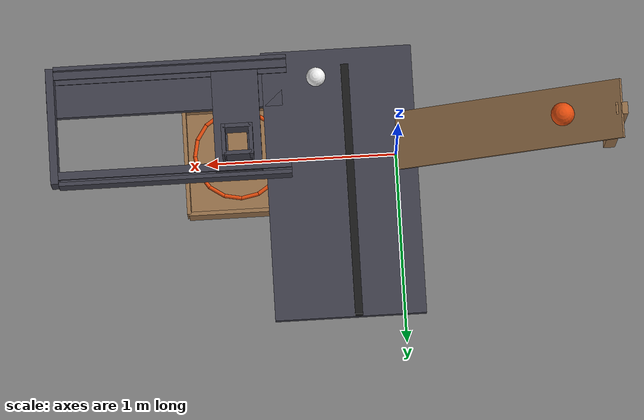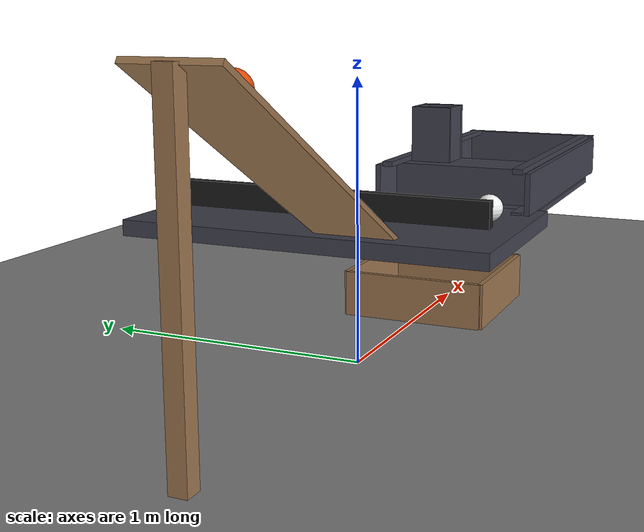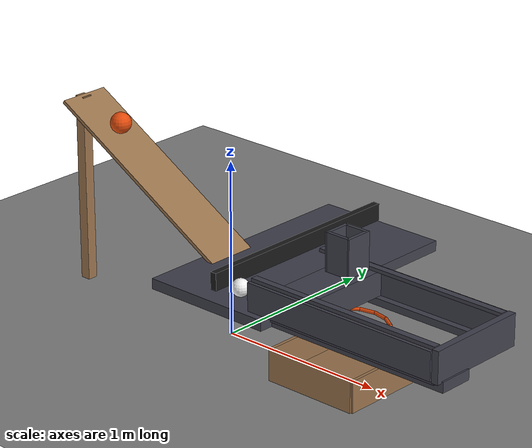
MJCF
<mujoco model="ramp_rotor_latch_and_drop">
  <compiler angle="radian"/>
  <option timestep="0.002"/>
  <worldbody>
    <geom name="floor" type="plane" size="6 6 0.1" friction="0.8 0.005 0.002"/>
    <body name="ramp">
      <geom name="ramp_deck" type="box" pos="-0.562916 0 0.775" size="0.65 0.15 0.01" euler="0 0.523599 0" friction="0.6 0.001 0.0001" rgba="0.6 0.45 0.3 1"/>
      <geom name="ramp_leg" type="box" pos="-1.12583 0 0.55" size="0.03 0.03 0.55" friction="0.6 0.001 0.0001" rgba="0.6 0.45 0.3 1"/>
    </body>
    <body name="runout">
      <geom name="runout" type="box" pos="0.29 0.2 0.43" size="0.39 0.7 0.03" friction="0.4 0.001 0.0001" rgba="0.25 0.25 0.3 1"/>
    </body>
    <body name="ball1" pos="-0.831025 0 1.01062">
      <freejoint/>
      <geom name="ball1" type="sphere" pos="0 0 0" size="0.06" mass="0.6" condim="6" friction="0.6 0.001 0.0001" solref="0.01 1" rgba="0.9 0.3 0.05 1"/>
    </body>
    <body name="rotor" pos="0.25 0.25 0.515">
      <joint name="rotor_hinge" type="hinge" pos="0 0 0" axis="0 0 1" limited="true" range="0 0.418879" damping="0.004" armature="0.0002"/>
      <geom name="rotor" type="box" pos="0 0 0" size="0.02 0.65 0.05" mass="0.08" friction="0.25 0.001 0.0001" solref="0.01 1" rgba="0.1 0.1 0.1 1"/>
    </body>
    <body name="ball2" pos="0.4 -0.35 0.51">
      <freejoint/>
      <geom name="ball2" type="sphere" pos="0 0 0" size="0.05" mass="0.15" condim="6" friction="0.4 0.001 0.0001" solref="0.01 1" rgba="0.95 0.95 0.95 1"/>
    </body>
    <body name="striker runway">
      <geom name="striker runway" type="box" pos="1.19 -0.32 0.43" size="0.61 0.1 0.03" friction="0.4 0.001 0.0001" rgba="0.25 0.25 0.3 1"/>
    </body>
    <body name="right lower rail">
      <geom name="right lower rail" type="box" pos="1.15 -0.41 0.45" size="0.6 0.02 0.02" friction="0.015 0.0001 0.0001" rgba="0.25 0.25 0.3 1"/>
    </body>
    <body name="left lower rail">
      <geom name="left lower rail" type="box" pos="1.15 0.11 0.45" size="0.6 0.02 0.02" friction="0.015 0.0001 0.0001" rgba="0.25 0.25 0.3 1"/>
    </body>
    <body name="right rail cap">
      <geom name="right rail cap" type="box" pos="1.15 -0.41 0.625" size="0.6 0.02 0.01" friction="0.015 0.0001 0.0001" rgba="0.25 0.25 0.3 1"/>
    </body>
    <body name="left rail cap">
      <geom name="left rail cap" type="box" pos="1.15 0.11 0.625" size="0.6 0.02 0.01" friction="0.015 0.0001 0.0001" rgba="0.25 0.25 0.3 1"/>
    </body>
    <body name="right channel wall">
      <geom name="right channel wall" type="box" pos="1.15 -0.45 0.54" size="0.6 0.01 0.08" friction="0.015 0.0001 0.0001" rgba="0.25 0.25 0.3 1"/>
    </body>
    <body name="left channel wall">
      <geom name="left channel wall" type="box" pos="1.15 0.15 0.54" size="0.6 0.01 0.08" friction="0.015 0.0001 0.0001" rgba="0.25 0.25 0.3 1"/>
    </body>
    <body name="latch" pos="0.82 -0.15 0.54">
      <freejoint/>
      <geom name="latch" type="box" pos="0 0 0" size="0.12 0.28 0.07" mass="0.08" friction="0.015 0.0001 0.0001" solref="0.01 1" rgba="0.25 0.25 0.3 1"/>
    </body>
    <body name="latch end stop">
      <geom name="latch end stop" type="box" pos="1.77 -0.15 0.54" size="0.02 0.3 0.09" solref="0.01 1" rgba="0.25 0.25 0.3 1"/>
    </body>
    <body name="ring">
      <geom name="ring_00" type="capsule" size="0.01" fromto="1.05 0 0.3 1.03249 0.0880172 0.3" rgba="0.9 0.3 0.05 1"/>
      <geom name="ring_01" type="capsule" size="0.01" fromto="1.03249 0.0880172 0.3 0.982635 0.162635 0.3" rgba="0.9 0.3 0.05 1"/>
      <geom name="ring_02" type="capsule" size="0.01" fromto="0.982635 0.162635 0.3 0.908017 0.212492 0.3" rgba="0.9 0.3 0.05 1"/>
      <geom name="ring_03" type="capsule" size="0.01" fromto="0.908017 0.212492 0.3 0.82 0.23 0.3" rgba="0.9 0.3 0.05 1"/>
      <geom name="ring_04" type="capsule" size="0.01" fromto="0.82 0.23 0.3 0.731983 0.212492 0.3" rgba="0.9 0.3 0.05 1"/>
      <geom name="ring_05" type="capsule" size="0.01" fromto="0.731983 0.212492 0.3 0.657365 0.162635 0.3" rgba="0.9 0.3 0.05 1"/>
      <geom name="ring_06" type="capsule" size="0.01" fromto="0.657365 0.162635 0.3 0.607508 0.0880172 0.3" rgba="0.9 0.3 0.05 1"/>
      <geom name="ring_07" type="capsule" size="0.01" fromto="0.607508 0.0880172 0.3 0.59 2.81669e-17 0.3" rgba="0.9 0.3 0.05 1"/>
      <geom name="ring_08" type="capsule" size="0.01" fromto="0.59 2.81669e-17 0.3 0.607508 -0.0880172 0.3" rgba="0.9 0.3 0.05 1"/>
      <geom name="ring_09" type="capsule" size="0.01" fromto="0.607508 -0.0880172 0.3 0.657365 -0.162635 0.3" rgba="0.9 0.3 0.05 1"/>
      <geom name="ring_10" type="capsule" size="0.01" fromto="0.657365 -0.162635 0.3 0.731983 -0.212492 0.3" rgba="0.9 0.3 0.05 1"/>
      <geom name="ring_11" type="capsule" size="0.01" fromto="0.731983 -0.212492 0.3 0.82 -0.23 0.3" rgba="0.9 0.3 0.05 1"/>
      <geom name="ring_12" type="capsule" size="0.01" fromto="0.82 -0.23 0.3 0.908017 -0.212492 0.3" rgba="0.9 0.3 0.05 1"/>
      <geom name="ring_13" type="capsule" size="0.01" fromto="0.908017 -0.212492 0.3 0.982635 -0.162635 0.3" rgba="0.9 0.3 0.05 1"/>
      <geom name="ring_14" type="capsule" size="0.01" fromto="0.982635 -0.162635 0.3 1.03249 -0.0880172 0.3" rgba="0.9 0.3 0.05 1"/>
      <geom name="ring_15" type="capsule" size="0.01" fromto="1.03249 -0.0880172 0.3 1.05 -5.63338e-17 0.3" rgba="0.9 0.3 0.05 1"/>
    </body>
    <body name="block" pos="0.82 0 0.66">
      <freejoint/>
      <geom name="block" type="box" pos="0 0 0" size="0.05 0.05 0.05" mass="0.2" friction="0.015 0.001 0.0001" solref="0.01 1" rgba="0.6 0.45 0.3 1"/>
    </body>
    <body name="payload near guide">
      <geom name="payload near guide" type="box" pos="0.75 0 0.725" size="0.01 0.08 0.11" friction="0.015 0.0001 0.0001" rgba="0.25 0.25 0.3 1"/>
    </body>
    <body name="payload far guide">
      <geom name="payload far guide" type="box" pos="0.89 0 0.725" size="0.01 0.08 0.11" friction="0.015 0.0001 0.0001" rgba="0.25 0.25 0.3 1"/>
    </body>
    <body name="payload left guide">
      <geom name="payload left guide" type="box" pos="0.82 0.07 0.725" size="0.07 0.01 0.11" friction="0.015 0.0001 0.0001" rgba="0.25 0.25 0.3 1"/>
    </body>
    <body name="payload right guide">
      <geom name="payload right guide" type="box" pos="0.82 -0.07 0.725" size="0.07 0.01 0.11" friction="0.015 0.0001 0.0001" rgba="0.25 0.25 0.3 1"/>
    </body>
    <body name="box">
      <geom name="box_base" type="box" pos="0.82 0 0.01" size="0.28 0.28 0.01" friction="0.8 0.005 0.002" solref="0.01 1" rgba="0.6 0.45 0.3 1"/>
      <geom name="box_near_wall" type="box" pos="0.54 0 0.09" size="0.01 0.28 0.09" friction="0.8 0.005 0.002" solref="0.01 1" rgba="0.6 0.45 0.3 1"/>
      <geom name="box_far_wall" type="box" pos="1.1 0 0.09" size="0.01 0.28 0.09" friction="0.8 0.005 0.002" solref="0.01 1" rgba="0.6 0.45 0.3 1"/>
      <geom name="box_left_wall" type="box" pos="0.82 0.28 0.09" size="0.28 0.01 0.09" friction="0.8 0.005 0.002" solref="0.01 1" rgba="0.6 0.45 0.3 1"/>
      <geom name="box_right_wall" type="box" pos="0.82 -0.28 0.09" size="0.28 0.01 0.09" friction="0.8 0.005 0.002" solref="0.01 1" rgba="0.6 0.45 0.3 1"/>
    </body>
  </worldbody>
  <keyframe>
    <key name="start" qpos="-0.831025 0 1.01062 1 0 0 0 0 0.4 -0.35 0.51 1 0 0 0 0.82 -0.15 0.54 1 0 0 0 0.82 0 0.66 1 0 0 0" qvel="0 0 0 0 0 0 0 0 0 0 0 0 0 0 0 0 0 0 0 0 0 0 0 0 0"/>
  </keyframe>
</mujoco>
